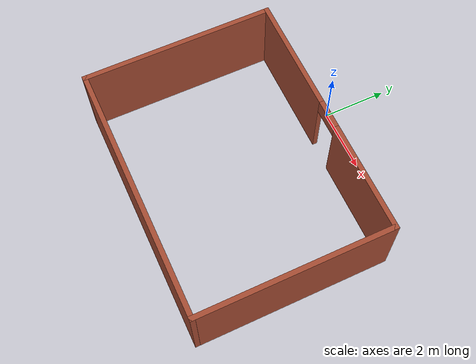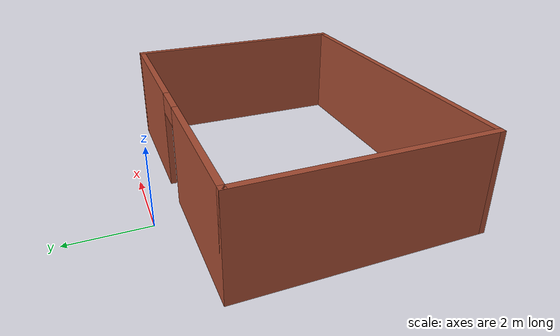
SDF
<?xml version='1.0'?>
<sdf version='1.6'>
  <model name='testArena'>
    <pose frame=''>1.075 -3.735 0 0 -0 0</pose>
    <link name='Wall_0'>
      <pose frame=''>0 2.925 0 0 -0 0</pose>
      <visual name='Wall_0_Visual_0'>
        <pose frame=''>-2.16424 0 1.25 0 -0 0</pose>
        <geometry>
          <box>
            <size>3.67152 0.15 2.5</size>
          </box>
        </geometry>
        <material>
          <script>
            <uri>file://media/materials/scripts/gazebo.material</uri>
            <name>Gazebo/Bricks</name>
          </script>
          <ambient>1 1 1 1</ambient>
        </material>
      </visual>
      <collision name='Wall_0_Collision_0'>
        <geometry>
          <box>
            <size>3.67152 0.15 2.5</size>
          </box>
        </geometry>
        <pose frame=''>-2.16424 0 1.25 0 -0 0</pose>
      </collision>
      <visual name='Wall_0_Visual_1'>
        <pose frame=''>2.28576 0 1.25 0 -0 0</pose>
        <geometry>
          <box>
            <size>3.42848 0.15 2.5</size>
          </box>
        </geometry>
        <material>
          <script>
            <uri>file://media/materials/scripts/gazebo.material</uri>
            <name>Gazebo/Bricks</name>
          </script>
          <ambient>1 1 1 1</ambient>
        </material>
      </visual>
      <collision name='Wall_0_Collision_1'>
        <geometry>
          <box>
            <size>3.42848 0.15 2.5</size>
          </box>
        </geometry>
        <pose frame=''>2.28576 0 1.25 0 -0 0</pose>
      </collision>
      <visual name='Wall_0_Visual_2'>
        <pose frame=''>0.121522 0 2.25 0 -0 0</pose>
        <geometry>
          <box>
            <size>0.9 0.15 0.5</size>
          </box>
        </geometry>
        <material>
          <script>
            <uri>file://media/materials/scripts/gazebo.material</uri>
            <name>Gazebo/Bricks</name>
          </script>
          <ambient>1 1 1 1</ambient>
        </material>
      </visual>
      <collision name='Wall_0_Collision_2'>
        <geometry>
          <box>
            <size>0.9 0.15 0.5</size>
          </box>
        </geometry>
        <pose frame=''>0.121522 0 2.25 0 -0 0</pose>
      </collision>
    </link>
    <link name='Wall_1'>
      <collision name='Wall_1_Collision'>
        <geometry>
          <box>
            <size>6 0.15 2.5</size>
          </box>
        </geometry>
        <pose frame=''>0 0 1.25 0 -0 0</pose>
      </collision>
      <visual name='Wall_1_Visual'>
        <pose frame=''>0 0 1.25 0 -0 0</pose>
        <geometry>
          <box>
            <size>6 0.15 2.5</size>
          </box>
        </geometry>
        <material>
          <script>
            <uri>file://media/materials/scripts/gazebo.material</uri>
            <name>Gazebo/Bricks</name>
          </script>
          <ambient>1 1 1 1</ambient>
        </material>
      </visual>
      <pose frame=''>3.925 0 0 0 0 -1.5708</pose>
    </link>
    <link name='Wall_2'>
      <collision name='Wall_2_Collision'>
        <geometry>
          <box>
            <size>8 0.15 2.5</size>
          </box>
        </geometry>
        <pose frame=''>0 0 1.25 0 -0 0</pose>
      </collision>
      <visual name='Wall_2_Visual'>
        <pose frame=''>0 0 1.25 0 -0 0</pose>
        <geometry>
          <box>
            <size>8 0.15 2.5</size>
          </box>
        </geometry>
        <material>
          <script>
            <uri>file://media/materials/scripts/gazebo.material</uri>
            <name>Gazebo/Bricks</name>
          </script>
          <ambient>1 1 1 1</ambient>
        </material>
      </visual>
      <pose frame=''>0 -2.925 0 0 -0 3.14159</pose>
    </link>
    <link name='Wall_3'>
      <collision name='Wall_3_Collision'>
        <geometry>
          <box>
            <size>6 0.15 2.5</size>
          </box>
        </geometry>
        <pose frame=''>0 0 1.25 0 -0 0</pose>
      </collision>
      <visual name='Wall_3_Visual'>
        <pose frame=''>0 0 1.25 0 -0 0</pose>
        <geometry>
          <box>
            <size>6 0.15 2.5</size>
          </box>
        </geometry>
        <material>
          <script>
            <uri>file://media/materials/scripts/gazebo.material</uri>
            <name>Gazebo/Bricks</name>
          </script>
          <ambient>1 1 1 1</ambient>
        </material>
      </visual>
      <pose frame=''>-3.925 0 0 0 -0 1.5708</pose>
    </link>
    <static>1</static>
  </model>
</sdf>
